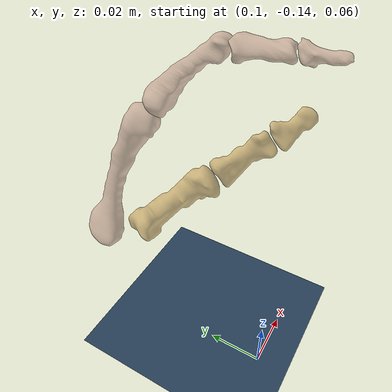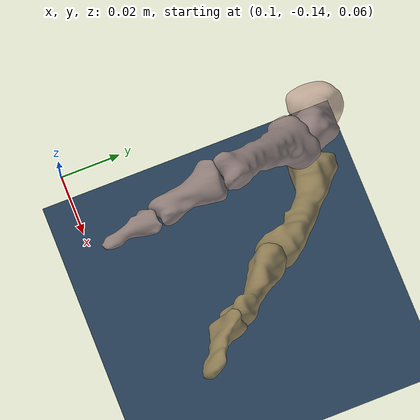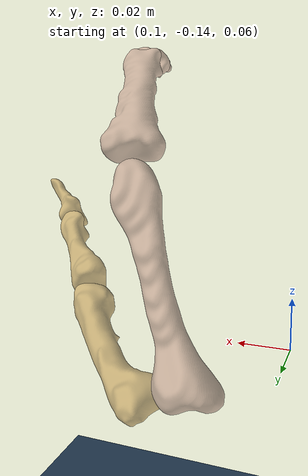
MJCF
<mujoco model="hand_model scene">
  <statistic center="-0.4 -0.4 0.2" extent="1.2"/>
  <visual>
    <headlight diffuse="0.6 0.6 0.6"  ambient="0.3 0.3 0.3" specular="0 0 0"/>
    <rgba haze="0.15 0.25 0.35 1"/>
    <global azimuth="170" elevation="-10" offheight="1024" offwidth="1024" />
    <map znear="0.01"/>
  </visual>
  <asset>
    <texture type="skybox" builtin="gradient" rgb1="0.3 0.5 0.7" rgb2="0 0 0" width="512"
          height="3072"/>
    <texture type="2d" name="groundplane" builtin="checker" mark="edge" rgb1="0.2 0.3 0.4"
          rgb2="0.1 0.2 0.3" markrgb="0.8 0.8 0.8" width="300" height="300"/>
    <material name="groundplane" texture="groundplane" texuniform="true" texrepeat="10 10"
          reflectance="0.3"/>
    <material name="bone" reflectance="1" shininess="0" specular="0" rgba="0.68 0.64 0.57 1"/>
  </asset>
  <default>
    <default class="zf">
      <geom type="mesh" contype="3" conaffinity="2" group="0" friction="0.7" solref="0.015 1" solimp="0.95 0.99 0.003" rgba="0.78 0.64 0.57 0.7"/>
    </default>
    <default class="dau">
      <geom type="mesh" contype="3" conaffinity="2" group="0" friction="0.7" solref="0.015 1" solimp="0.95 0.99 0.003" rgba="0.78 0.64 0.37 0.7"/>
    </default>
    <default class="visual">
      <geom type="mesh" contype="0" conaffinity="0" group="2" material="bone" rgba="0.68 0.64 0.57 1.0"/>
    </default>
    <default class="tracker">
      <geom type="mesh" contype="0" conaffinity="0" group="2" rgba="0.2 0.2 1 0.2"/>
    </default>
  </default>
  <worldbody>
    <light pos="0 0 1.5" dir="0 0 -1" directional="true"/>
    <geom name="floor" size="0 0 0.05" type="plane" material="groundplane" pos="0 0 0"/>
  </worldbody>
  <include file="./model.xml"/>
</mujoco>

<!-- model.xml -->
<mujoco model="hand model">
    <compiler angle="radian" autolimits="true" meshdir="../../assets/meshes" texturedir="assets" />
    <option integrator="implicit" />

    <asset>
        <mesh file="Segmentation_ZF_DIP.stl" name="ZF-DIP" scale="0.001 0.001 0.001" />
        <mesh file="Segmentation_ZF_PIP.stl" name="ZF-PIP1" scale="0.001 0.001 0.001" />
        <mesh file="Segmentation_ZF_MCP.stl" name="ZF-PIP2" scale="0.001 0.001 0.001" />
        <mesh file="Segmentation_ZF_Mittelhand.stl" name="ZF-MCP" scale="0.001 0.001 0.001" />
        <mesh file="Segmentation_DAU_Osmetacarpale_1.stl" name="DAU-MCP" scale="0.001 0.001 0.001" />
        <mesh file="Segmentation_DAU_Phalax_proximalis.stl" name="DAU-PIP" scale="0.001 0.001 0.001" />
        <mesh file="Segmentation_DAU_DIP.stl" name="DAU-DIP" scale="0.001 0.001 0.001" />
    </asset>

    <worldbody>

        <body name="DAU_DIP" pos="0.19544032592236366 0.00855591365605406 0.35497822508424004" quat="0.9345963220689134 0.2211948240840308 0.2754725947812013 0.041441695165693626">
            <geom class="dau" mesh="DAU-DIP" type="mesh" />
        </body>

        <body name="DAU_PIP" pos="0.17654004749965377 -0.0016625772111952984 0.36060542955427555" quat="0.9455293834720957 0.2473826471384519 0.21073298670184074 0.019173398273982428">
            <geom class="dau" mesh="DAU-PIP" type="mesh" />
        </body>

        <body name="DAU_MCP" pos="0.16866059695703103 -0.019493614955643623 0.36620493153021455" quat="0.9427522857405032 0.2839805466518207 0.1747161343671061 -0.006888341324674084">
            <geom class="dau" mesh="DAU-MCP" type="mesh" />
        </body>

        <body name="ZF_DIP" pos="0.11050426044874445 0.006923141511159742 0.3796463598511494" quat="0.9647008527853641 0.2577810468413862 0.03753219815228035 -0.03863328391954454">
            <geom class="zf" mesh="ZF-DIP" type="mesh" />
        </body>

        <body name="ZF_PIP1" pos="0.1249856291827062 0.04238702604150254 0.35613075903915287" quat="0.9801946134865426 0.17845683233021517 0.03405041905066563 -0.0788178130190569">
            <geom class="zf" mesh="ZF-PIP1" type="mesh" />
        </body>

        <body name="ZF_PIP2" pos="0.1261713980168844 0.07303119491421252 0.32939432828658965" quat="0.9912700827934753 0.09527156219033242 0.02240842223795785 -0.08834486407955938">
            <geom class="zf" mesh="ZF-PIP2" type="mesh" />
        </body>

        <body name="ZF_MCP" pos="0.1758451844398884 -0.004741482253588231 0.36277805947946246" quat="0.9502666319427773 0.2573311084472402 0.14747593209357987 -0.09499935944296996">
            <geom class="zf" mesh="ZF-MCP" type="mesh" />
        </body>

        <camera name="camera0" pos="0.375 0.069 0.146" xyaxes="-0.581 0.814 0.000 -0.114 -0.081 0.990" />
        <camera name="camera1" pos="0.461 0.120 0.252" xyaxes="-0.593 0.805 -0.000 -0.358 -0.264 0.896" />
        <camera name="camera2" pos="0.617 -0.002 0.149" xyaxes="-0.249 0.968 0.000 0.018 0.005 1.000" />

    </worldbody>
</mujoco>
